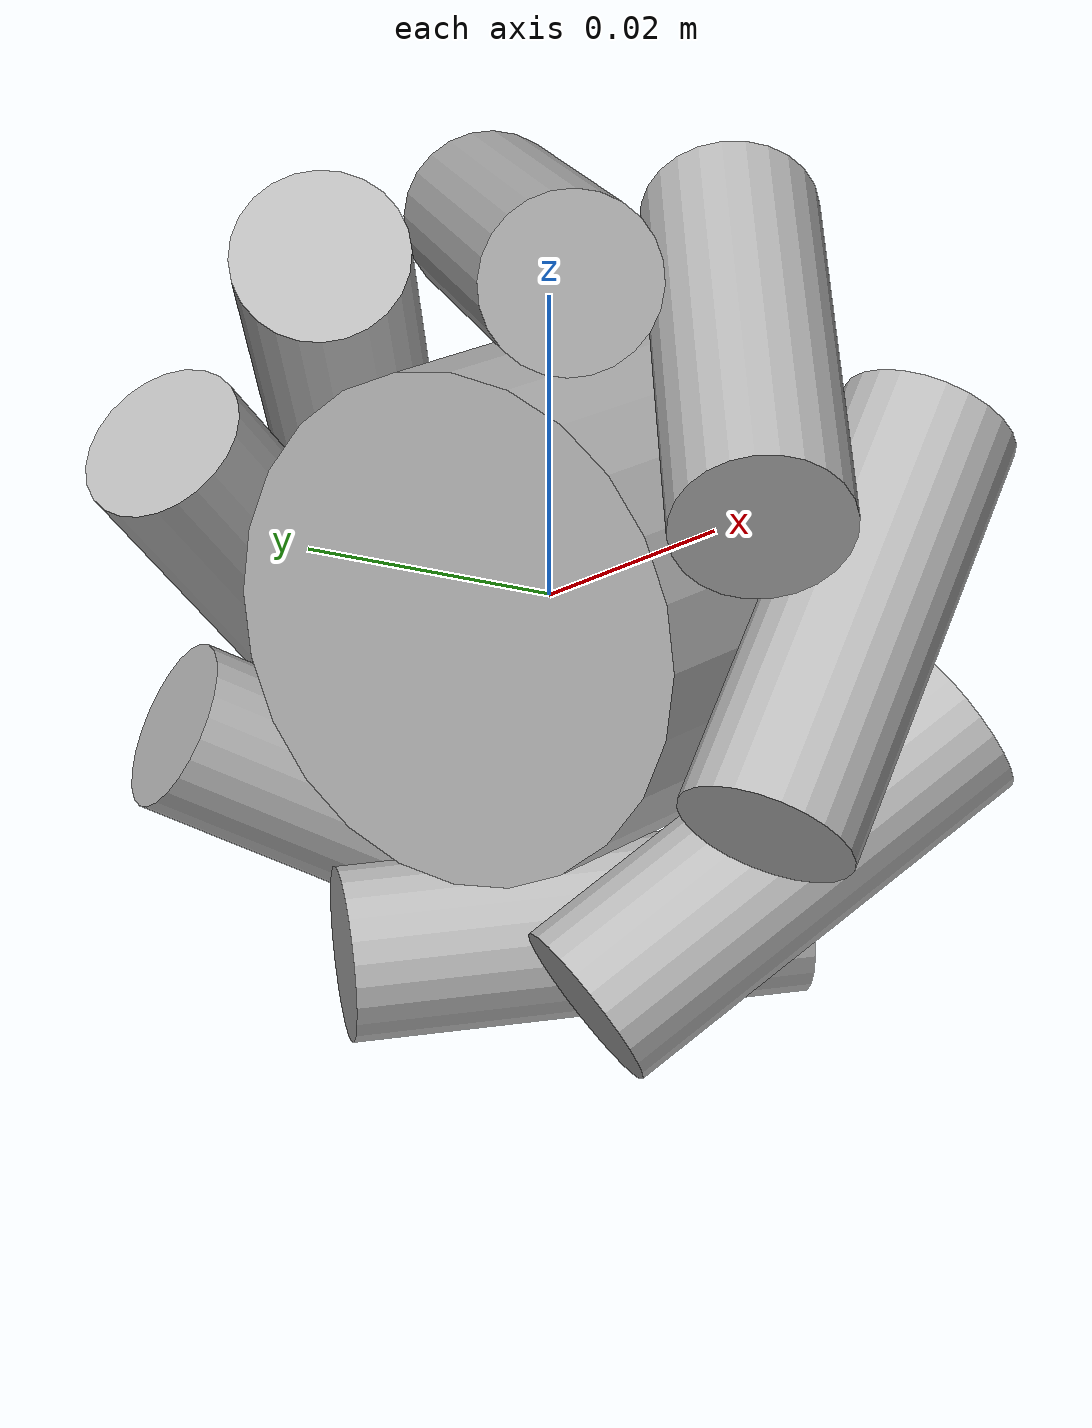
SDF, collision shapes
<?xml version="1.0"?>
<sdf version="1.10">
  <model name="sverk_mecanum_wheel_right">
    <!-- This is a suspended single-wheel inspection model, not a vehicle. -->
    <link name="wheel_mount">
      <gravity>false</gravity>
      <inertial>
        <mass>0.01</mass>
        <inertia>
          <ixx>0.000001</ixx>
          <iyy>0.000001</iyy>
          <izz>0.000001</izz>
        </inertia>
      </inertial>
      <visual name="mount_marker">
        <geometry>
          <sphere><radius>0.002</radius></sphere>
        </geometry>
        <material><diffuse>0.9 0.1 0.1 1</diffuse></material>
      </visual>
    </link>

    <link name="wheel_hub">
      <gravity>false</gravity>
      <inertial>
        <mass>0.10</mass>
        <inertia>
          <ixx>0.000030</ixx>
          <iyy>0.000020</iyy>
          <izz>0.000020</izz>
        </inertia>
      </inertial>
      <visual name="wheel_mesh">
        <geometry>
          <mesh>
            <uri>model://sverk_mecanum_wheel_right/meshes/Mecanum_Wheel_60mm_Right.obj</uri>
          </mesh>
        </geometry>
      </visual>
      <collision name="hub_collision">
        <pose>0 0 0 0 1.570796327 0</pose>
        <geometry>
          <cylinder><radius>0.017</radius><length>0.022</length></cylinder>
        </geometry>
      </collision>
    </link>

    <joint name="wheel_joint" type="revolute">
      <parent>wheel_mount</parent>
      <child>wheel_hub</child>
      <axis>
        <xyz>1 0 0</xyz>
        <limit><lower>-1e16</lower><upper>1e16</upper><effort>2</effort><velocity>100</velocity></limit>
        <dynamics><damping>0.0001</damping></dynamics>
      </axis>
    </joint>

    <!-- Roller 0 centre is (0.003, 22.937, -1.705) mm; its measured central-axis direction is (0.707107, -0.053382, -0.705129). -->
    <link name="roller_0"><pose relative_to="wheel_hub">0.000003 0.022937 -0.001705 0 0.782577251 -0.075350181</pose><gravity>false</gravity><inertial><mass>0.003</mass><inertia><ixx>0.00000002</ixx><iyy>0.00000024</iyy><izz>0.00000024</izz></inertia></inertial><visual name="mesh"><geometry><mesh><uri>model://sverk_mecanum_wheel_right/meshes/roller_Varsayilan.obj</uri></mesh></geometry></visual><collision name="collision"><pose>0 0 0 0 1.570796327 0</pose><geometry><cylinder><radius>0.0059</radius><length>0.0308</length></cylinder></geometry></collision></link>
    <link name="roller_1"><pose relative_to="wheel_hub">0.000003 0.017424525 0.015013291 0.988897628 0.566086368 0.577602867</pose><gravity>false</gravity><inertial><mass>0.003</mass><inertia><ixx>0.00000002</ixx><iyy>0.00000024</iyy><izz>0.00000024</izz></inertia></inertial><visual name="mesh"><geometry><mesh><uri>model://sverk_mecanum_wheel_right/meshes/roller_Varsayilan.obj</uri></mesh></geometry></visual><collision name="collision"><pose>0 0 0 0 1.570796327 0</pose><geometry><cylinder><radius>0.0059</radius><length>0.0308</length></cylinder></geometry></collision></link>
    <link name="roller_2"><pose relative_to="wheel_hub">0.000003 0.001705 0.022937 1.623977028 0.053405549 0.783997995</pose><gravity>false</gravity><inertial><mass>0.003</mass><inertia><ixx>0.00000002</ixx><iyy>0.00000024</iyy><izz>0.00000024</izz></inertia></inertial><visual name="mesh"><geometry><mesh><uri>model://sverk_mecanum_wheel_right/meshes/roller_Varsayilan.obj</uri></mesh></geometry></visual><collision name="collision"><pose>0 0 0 0 1.570796327 0</pose><geometry><cylinder><radius>0.0059</radius><length>0.0308</length></cylinder></geometry></collision></link>
    <link name="roller_3"><pose relative_to="wheel_hub">0.000003 -0.015013291 0.017424525 2.223416667 -0.478943805 0.648925998</pose><gravity>false</gravity><inertial><mass>0.003</mass><inertia><ixx>0.00000002</ixx><iyy>0.00000024</iyy><izz>0.00000024</izz></inertia></inertial><visual name="mesh"><geometry><mesh><uri>model://sverk_mecanum_wheel_right/meshes/roller_Varsayilan.obj</uri></mesh></geometry></visual><collision name="collision"><pose>0 0 0 0 1.570796327 0</pose><geometry><cylinder><radius>0.0059</radius><length>0.0308</length></cylinder></geometry></collision></link>
    <link name="roller_4"><pose relative_to="wheel_hub">0.000003 -0.022937 0.001705 3.141592654 -0.782577251 0.075350181</pose><gravity>false</gravity><inertial><mass>0.003</mass><inertia><ixx>0.00000002</ixx><iyy>0.00000024</iyy><izz>0.00000024</izz></inertia></inertial><visual name="mesh"><geometry><mesh><uri>model://sverk_mecanum_wheel_right/meshes/roller_Varsayilan.obj</uri></mesh></geometry></visual><collision name="collision"><pose>0 0 0 0 1.570796327 0</pose><geometry><cylinder><radius>0.0059</radius><length>0.0308</length></cylinder></geometry></collision></link>
    <link name="roller_5"><pose relative_to="wheel_hub">0.000003 -0.017424525 -0.015013291 -2.152695026 -0.566086368 -0.577602867</pose><gravity>false</gravity><inertial><mass>0.003</mass><inertia><ixx>0.00000002</ixx><iyy>0.00000024</iyy><izz>0.00000024</izz></inertia></inertial><visual name="mesh"><geometry><mesh><uri>model://sverk_mecanum_wheel_right/meshes/roller_Varsayilan.obj</uri></mesh></geometry></visual><collision name="collision"><pose>0 0 0 0 1.570796327 0</pose><geometry><cylinder><radius>0.0059</radius><length>0.0308</length></cylinder></geometry></collision></link>
    <link name="roller_6"><pose relative_to="wheel_hub">0.000003 -0.001705 -0.022937 -1.517615626 -0.053405549 -0.783997995</pose><gravity>false</gravity><inertial><mass>0.003</mass><inertia><ixx>0.00000002</ixx><iyy>0.00000024</iyy><izz>0.00000024</izz></inertia></inertial><visual name="mesh"><geometry><mesh><uri>model://sverk_mecanum_wheel_right/meshes/roller_Varsayilan.obj</uri></mesh></geometry></visual><collision name="collision"><pose>0 0 0 0 1.570796327 0</pose><geometry><cylinder><radius>0.0059</radius><length>0.0308</length></cylinder></geometry></collision></link>
    <link name="roller_7"><pose relative_to="wheel_hub">0.000003 0.015013291 -0.017424525 -0.918175987 0.478943805 -0.648925998</pose><gravity>false</gravity><inertial><mass>0.003</mass><inertia><ixx>0.00000002</ixx><iyy>0.00000024</iyy><izz>0.00000024</izz></inertia></inertial><visual name="mesh"><geometry><mesh><uri>model://sverk_mecanum_wheel_right/meshes/roller_Varsayilan.obj</uri></mesh></geometry></visual><collision name="collision"><pose>0 0 0 0 1.570796327 0</pose><geometry><cylinder><radius>0.0059</radius><length>0.0308</length></cylinder></geometry></collision></link>

    <joint name="roller_0_joint" type="revolute"><pose relative_to="wheel_hub">0.000003 0.022937 -0.001705 0 0.782577251 -0.075350181</pose><parent>wheel_hub</parent><child>roller_0</child><axis><xyz>1 0 0</xyz><limit><lower>-1e16</lower><upper>1e16</upper><effort>0</effort><velocity>1000</velocity></limit><dynamics><damping>0.00001</damping><friction>0.00001</friction></dynamics></axis></joint>
    <joint name="roller_1_joint" type="revolute"><pose relative_to="wheel_hub">0.000003 0.017424525 0.015013291 0.988897628 0.566086368 0.577602867</pose><parent>wheel_hub</parent><child>roller_1</child><axis><xyz>1 0 0</xyz><limit><lower>-1e16</lower><upper>1e16</upper><effort>0</effort><velocity>1000</velocity></limit><dynamics><damping>0.00001</damping><friction>0.00001</friction></dynamics></axis></joint>
    <joint name="roller_2_joint" type="revolute"><pose relative_to="wheel_hub">0.000003 0.001705 0.022937 1.623977028 0.053405549 0.783997995</pose><parent>wheel_hub</parent><child>roller_2</child><axis><xyz>1 0 0</xyz><limit><lower>-1e16</lower><upper>1e16</upper><effort>0</effort><velocity>1000</velocity></limit><dynamics><damping>0.00001</damping><friction>0.00001</friction></dynamics></axis></joint>
    <joint name="roller_3_joint" type="revolute"><pose relative_to="wheel_hub">0.000003 -0.015013291 0.017424525 2.223416667 -0.478943805 0.648925998</pose><parent>wheel_hub</parent><child>roller_3</child><axis><xyz>1 0 0</xyz><limit><lower>-1e16</lower><upper>1e16</upper><effort>0</effort><velocity>1000</velocity></limit><dynamics><damping>0.00001</damping><friction>0.00001</friction></dynamics></axis></joint>
    <joint name="roller_4_joint" type="revolute"><pose relative_to="wheel_hub">0.000003 -0.022937 0.001705 3.141592654 -0.782577251 0.075350181</pose><parent>wheel_hub</parent><child>roller_4</child><axis><xyz>1 0 0</xyz><limit><lower>-1e16</lower><upper>1e16</upper><effort>0</effort><velocity>1000</velocity></limit><dynamics><damping>0.00001</damping><friction>0.00001</friction></dynamics></axis></joint>
    <joint name="roller_5_joint" type="revolute"><pose relative_to="wheel_hub">0.000003 -0.017424525 -0.015013291 -2.152695026 -0.566086368 -0.577602867</pose><parent>wheel_hub</parent><child>roller_5</child><axis><xyz>1 0 0</xyz><limit><lower>-1e16</lower><upper>1e16</upper><effort>0</effort><velocity>1000</velocity></limit><dynamics><damping>0.00001</damping><friction>0.00001</friction></dynamics></axis></joint>
    <joint name="roller_6_joint" type="revolute"><pose relative_to="wheel_hub">0.000003 -0.001705 -0.022937 -1.517615626 -0.053405549 -0.783997995</pose><parent>wheel_hub</parent><child>roller_6</child><axis><xyz>1 0 0</xyz><limit><lower>-1e16</lower><upper>1e16</upper><effort>0</effort><velocity>1000</velocity></limit><dynamics><damping>0.00001</damping><friction>0.00001</friction></dynamics></axis></joint>
    <joint name="roller_7_joint" type="revolute"><pose relative_to="wheel_hub">0.000003 0.015013291 -0.017424525 -0.918175987 0.478943805 -0.648925998</pose><parent>wheel_hub</parent><child>roller_7</child><axis><xyz>1 0 0</xyz><limit><lower>-1e16</lower><upper>1e16</upper><effort>0</effort><velocity>1000</velocity></limit><dynamics><damping>0.00001</damping><friction>0.00001</friction></dynamics></axis></joint>
  </model>
</sdf>
